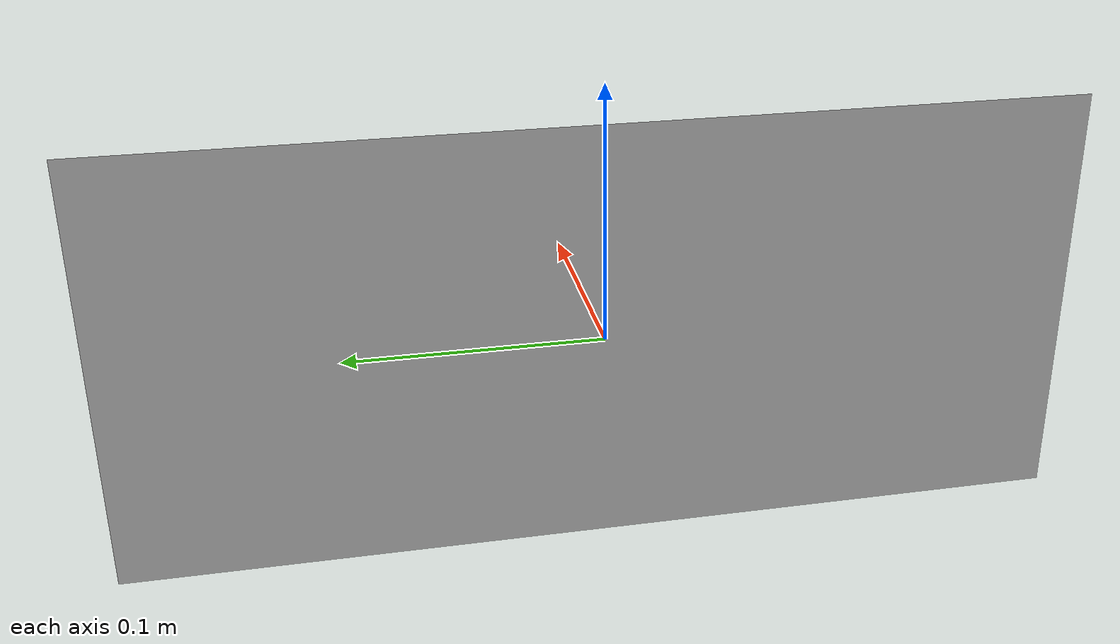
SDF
<?xml version="1.0" ?>
<sdf version="1.5">
  <model name="Start_Box">
    <static>true</static>
    <link name="link">
      <pose>0 0 0 1.57 0 1.57</pose>
    	<colission name="colission">
        <geometry>
          <box>
              <size>0.3 0.5 0.01</size>
          </box>
        </geometry>
      </colission>
      <visual name="visual">
        <geometry>
          <mesh>
            <uri>model://start_box/meshes/start_box.dae</uri>
          </mesh>
        </geometry>
      </visual>
    </link>
  </model>
</sdf>
